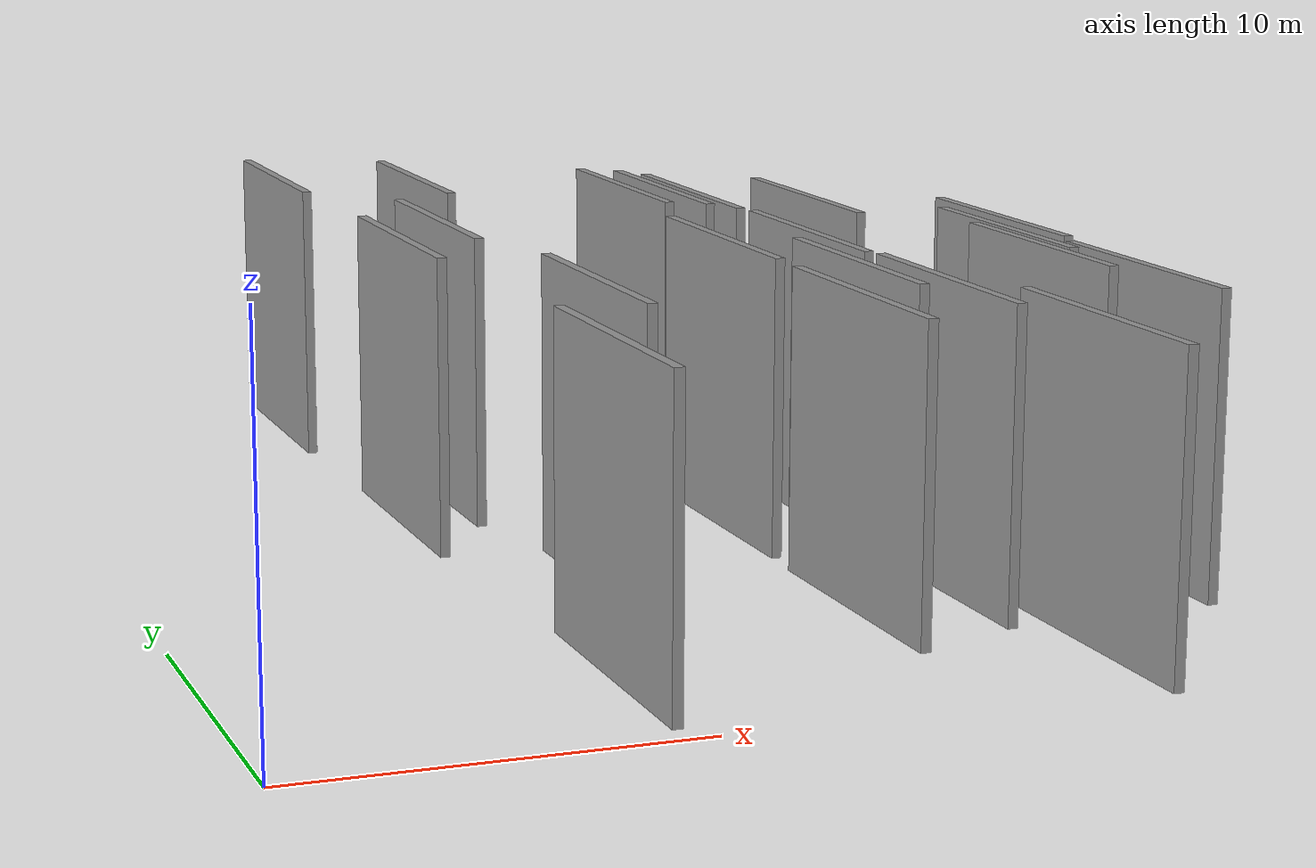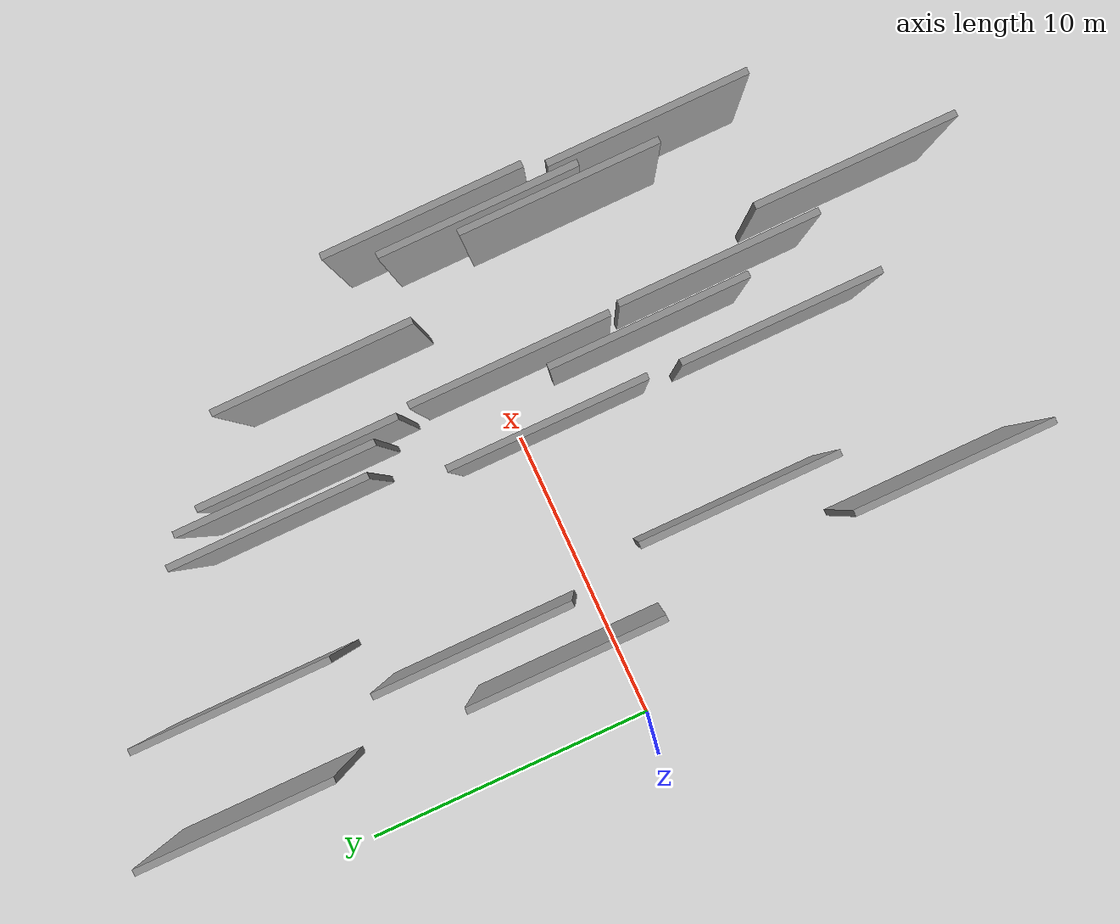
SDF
<sdf version="1.6">
 <world name="default">
  <scene>
   <sky><clouds><speed>12</speed></clouds></sky>
   <ambient>0.4 0.4 0.4 1</ambient>
   <background>0.7 0.7 0.7 1</background>
   <shadows>1</shadows>
  </scene>
  <gravity>0 0 -9.8066</gravity>
  <magnetic_field>6e-06 2.3e-05 -4.2e-05</magnetic_field>
  <physics default="0" name="default_physics" type="ode">
   <ode>
    <solver>
     <type>quick</type>
     <iters>10</iters>
     <sor>1.0</sor>
     <use_dynamic_moi_rescaling>0</use_dynamic_moi_rescaling>
    </solver>
    <constraints>
     <cfm>0</cfm>
     <erp>0.2</erp>
     <contact_max_correcting_vel>100</contact_max_correcting_vel>
     <contact_surface_layer>0.001</contact_surface_layer>
    </constraints>
   </ode>
   <max_step_size>0.004</max_step_size>
   <real_time_factor>1</real_time_factor>
   <real_time_update_rate>250</real_time_update_rate>
  </physics>
  <light name="sun" type="directional">
   <pose>0 0 10 0 0 0</pose>
   <diffuse>0.8 0.8 0.8 1</diffuse>
   <specular>0.2 0.2 0.2 1</specular>
   <attenuation>
    <range>1000</range>
    <constant>0.9</constant>
    <linear>0.01</linear>
    <quadratic>0.001</quadratic>
   </attenuation>
   <direction>-0.5 0.1 -0.9</direction>
  </light>
  <model name="grey_wall_1">
   <static>1</static>
   <pose>11.3788 5.5534 5.0 0.000000 0.000000 1.570796</pose>
   <link name="link">
    <pose>0 0 3.00 0 0 0</pose>
    <collision name="collision"><geometry><box><size>6.00 0.2 6.00</size></box></geometry></collision>
    <visual name="visual">
     <cast_shadows>0</cast_shadows>
     <geometry><box><size>6.00 0.2 6.00</size></box></geometry>
     <material>
      <script>
       <uri>model://grey_wall/materials/scripts</uri>
       <uri>model://grey_wall/materials/textures</uri>
       <name>vrc/grey_wall</name>
      </script>
     </material>
    </visual>
   </link>
  </model>
  <model name="grey_wall_2">
   <static>1</static>
   <pose>15.1914 -3.9984 5.0 0.000000 0.000000 1.570796</pose>
   <link name="link">
    <pose>0 0 3.00 0 0 0</pose>
    <collision name="collision"><geometry><box><size>6.00 0.2 6.00</size></box></geometry></collision>
    <visual name="visual">
     <cast_shadows>0</cast_shadows>
     <geometry><box><size>6.00 0.2 6.00</size></box></geometry>
     <material>
      <script>
       <uri>model://grey_wall/materials/scripts</uri>
       <uri>model://grey_wall/materials/textures</uri>
       <name>vrc/grey_wall</name>
      </script>
     </material>
    </visual>
   </link>
  </model>
  <model name="grey_wall_3">
   <static>1</static>
   <pose>9.4826 -7.9947 5.0 0.000000 0.000000 1.570796</pose>
   <link name="link">
    <pose>0 0 3.00 0 0 0</pose>
    <collision name="collision"><geometry><box><size>6.00 0.2 6.00</size></box></geometry></collision>
    <visual name="visual">
     <cast_shadows>0</cast_shadows>
     <geometry><box><size>6.00 0.2 6.00</size></box></geometry>
     <material>
      <script>
       <uri>model://grey_wall/materials/scripts</uri>
       <uri>model://grey_wall/materials/textures</uri>
       <name>vrc/grey_wall</name>
      </script>
     </material>
    </visual>
   </link>
  </model>
  <model name="grey_wall_4">
   <static>1</static>
   <pose>9.5295 -1.0471 5.0 0.000000 0.000000 1.570796</pose>
   <link name="link">
    <pose>0 0 3.00 0 0 0</pose>
    <collision name="collision"><geometry><box><size>6.00 0.2 6.00</size></box></geometry></collision>
    <visual name="visual">
     <cast_shadows>0</cast_shadows>
     <geometry><box><size>6.00 0.2 6.00</size></box></geometry>
     <material>
      <script>
       <uri>model://grey_wall/materials/scripts</uri>
       <uri>model://grey_wall/materials/textures</uri>
       <name>vrc/grey_wall</name>
      </script>
     </material>
    </visual>
   </link>
  </model>
  <model name="grey_wall_5">
   <static>1</static>
   <pose>4.7895 3.3583 5.0 0.000000 0.000000 1.570796</pose>
   <link name="link">
    <pose>0 0 3.00 0 0 0</pose>
    <collision name="collision"><geometry><box><size>6.00 0.2 6.00</size></box></geometry></collision>
    <visual name="visual">
     <cast_shadows>0</cast_shadows>
     <geometry><box><size>6.00 0.2 6.00</size></box></geometry>
     <material>
      <script>
       <uri>model://grey_wall/materials/scripts</uri>
       <uri>model://grey_wall/materials/textures</uri>
       <name>vrc/grey_wall</name>
      </script>
     </material>
    </visual>
   </link>
  </model>
  <model name="grey_wall_6">
   <static>1</static>
   <pose>15.5508 -1.7417 5.0 0.000000 0.000000 1.570796</pose>
   <link name="link">
    <pose>0 0 3.00 0 0 0</pose>
    <collision name="collision"><geometry><box><size>6.00 0.2 6.00</size></box></geometry></collision>
    <visual name="visual">
     <cast_shadows>0</cast_shadows>
     <geometry><box><size>6.00 0.2 6.00</size></box></geometry>
     <material>
      <script>
       <uri>model://grey_wall/materials/scripts</uri>
       <uri>model://grey_wall/materials/textures</uri>
       <name>vrc/grey_wall</name>
      </script>
     </material>
    </visual>
   </link>
  </model>
  <model name="grey_wall_7">
   <static>1</static>
   <pose>5.4618 -4.9224 5.0 0.000000 0.000000 1.570796</pose>
   <link name="link">
    <pose>0 0 3.00 0 0 0</pose>
    <collision name="collision"><geometry><box><size>6.00 0.2 6.00</size></box></geometry></collision>
    <visual name="visual">
     <cast_shadows>0</cast_shadows>
     <geometry><box><size>6.00 0.2 6.00</size></box></geometry>
     <material>
      <script>
       <uri>model://grey_wall/materials/scripts</uri>
       <uri>model://grey_wall/materials/textures</uri>
       <name>vrc/grey_wall</name>
      </script>
     </material>
    </visual>
   </link>
  </model>
  <model name="grey_wall_8">
   <static>1</static>
   <pose>3.8223 -10.5559 5.0 0.000000 0.000000 1.570796</pose>
   <link name="link">
    <pose>0 0 3.00 0 0 0</pose>
    <collision name="collision"><geometry><box><size>6.00 0.2 6.00</size></box></geometry></collision>
    <visual name="visual">
     <cast_shadows>0</cast_shadows>
     <geometry><box><size>6.00 0.2 6.00</size></box></geometry>
     <material>
      <script>
       <uri>model://grey_wall/materials/scripts</uri>
       <uri>model://grey_wall/materials/textures</uri>
       <name>vrc/grey_wall</name>
      </script>
     </material>
    </visual>
   </link>
  </model>
  <model name="grey_wall_9">
   <static>1</static>
   <pose>3.3732 1.2112 5.0 0.000000 0.000000 1.570796</pose>
   <link name="link">
    <pose>0 0 3.00 0 0 0</pose>
    <collision name="collision"><geometry><box><size>6.00 0.2 6.00</size></box></geometry></collision>
    <visual name="visual">
     <cast_shadows>0</cast_shadows>
     <geometry><box><size>6.00 0.2 6.00</size></box></geometry>
     <material>
      <script>
       <uri>model://grey_wall/materials/scripts</uri>
       <uri>model://grey_wall/materials/textures</uri>
       <name>vrc/grey_wall</name>
      </script>
     </material>
    </visual>
   </link>
  </model>
  <model name="grey_wall_10">
   <static>1</static>
   <pose>10.8827 -4.6897 5.0 0.000000 0.000000 1.570796</pose>
   <link name="link">
    <pose>0 0 3.00 0 0 0</pose>
    <collision name="collision"><geometry><box><size>6.00 0.2 6.00</size></box></geometry></collision>
    <visual name="visual">
     <cast_shadows>0</cast_shadows>
     <geometry><box><size>6.00 0.2 6.00</size></box></geometry>
     <material>
      <script>
       <uri>model://grey_wall/materials/scripts</uri>
       <uri>model://grey_wall/materials/textures</uri>
       <name>vrc/grey_wall</name>
      </script>
     </material>
    </visual>
   </link>
  </model>
  <model name="grey_wall_11">
   <static>1</static>
   <pose>13.5632 4.1065 5.0 0.000000 0.000000 1.570796</pose>
   <link name="link">
    <pose>0 0 3.00 0 0 0</pose>
    <collision name="collision"><geometry><box><size>6.00 0.2 6.00</size></box></geometry></collision>
    <visual name="visual">
     <cast_shadows>0</cast_shadows>
     <geometry><box><size>6.00 0.2 6.00</size></box></geometry>
     <material>
      <script>
       <uri>model://grey_wall/materials/scripts</uri>
       <uri>model://grey_wall/materials/textures</uri>
       <name>vrc/grey_wall</name>
      </script>
     </material>
    </visual>
   </link>
  </model>
  <model name="grey_wall_12">
   <static>1</static>
   <pose>16.1577 -0.3563 5.0 0.000000 0.000000 1.570796</pose>
   <link name="link">
    <pose>0 0 3.00 0 0 0</pose>
    <collision name="collision"><geometry><box><size>6.00 0.2 6.00</size></box></geometry></collision>
    <visual name="visual">
     <cast_shadows>0</cast_shadows>
     <geometry><box><size>6.00 0.2 6.00</size></box></geometry>
     <material>
      <script>
       <uri>model://grey_wall/materials/scripts</uri>
       <uri>model://grey_wall/materials/textures</uri>
       <name>vrc/grey_wall</name>
      </script>
     </material>
    </visual>
   </link>
  </model>
  <model name="grey_wall_13">
   <static>1</static>
   <pose>10.2532 6.9409 5.0 0.000000 0.000000 1.570796</pose>
   <link name="link">
    <pose>0 0 3.00 0 0 0</pose>
    <collision name="collision"><geometry><box><size>6.00 0.2 6.00</size></box></geometry></collision>
    <visual name="visual">
     <cast_shadows>0</cast_shadows>
     <geometry><box><size>6.00 0.2 6.00</size></box></geometry>
     <material>
      <script>
       <uri>model://grey_wall/materials/scripts</uri>
       <uri>model://grey_wall/materials/textures</uri>
       <name>vrc/grey_wall</name>
      </script>
     </material>
    </visual>
   </link>
  </model>
  <model name="grey_wall_14">
   <static>1</static>
   <pose>10.9964 6.3959 5.0 0.000000 0.000000 1.570796</pose>
   <link name="link">
    <pose>0 0 3.00 0 0 0</pose>
    <collision name="collision"><geometry><box><size>6.00 0.2 6.00</size></box></geometry></collision>
    <visual name="visual">
     <cast_shadows>0</cast_shadows>
     <geometry><box><size>6.00 0.2 6.00</size></box></geometry>
     <material>
      <script>
       <uri>model://grey_wall/materials/scripts</uri>
       <uri>model://grey_wall/materials/textures</uri>
       <name>vrc/grey_wall</name>
      </script>
     </material>
    </visual>
   </link>
  </model>
  <model name="grey_wall_15">
   <static>1</static>
   <pose>15.8823 -6.9526 5.0 0.000000 0.000000 1.570796</pose>
   <link name="link">
    <pose>0 0 3.00 0 0 0</pose>
    <collision name="collision"><geometry><box><size>6.00 0.2 6.00</size></box></geometry></collision>
    <visual name="visual">
     <cast_shadows>0</cast_shadows>
     <geometry><box><size>6.00 0.2 6.00</size></box></geometry>
     <material>
      <script>
       <uri>model://grey_wall/materials/scripts</uri>
       <uri>model://grey_wall/materials/textures</uri>
       <name>vrc/grey_wall</name>
      </script>
     </material>
    </visual>
   </link>
  </model>
  <model name="grey_wall_16">
   <static>1</static>
   <pose>11.5136 -0.8226 5.0 0.000000 0.000000 1.570796</pose>
   <link name="link">
    <pose>0 0 3.00 0 0 0</pose>
    <collision name="collision"><geometry><box><size>6.00 0.2 6.00</size></box></geometry></collision>
    <visual name="visual">
     <cast_shadows>0</cast_shadows>
     <geometry><box><size>6.00 0.2 6.00</size></box></geometry>
     <material>
      <script>
       <uri>model://grey_wall/materials/scripts</uri>
       <uri>model://grey_wall/materials/textures</uri>
       <name>vrc/grey_wall</name>
      </script>
     </material>
    </visual>
   </link>
  </model>
  <model name="grey_wall_17">
   <static>1</static>
   <pose>11.6338 -7.1258 5.0 0.000000 0.000000 1.570796</pose>
   <link name="link">
    <pose>0 0 3.00 0 0 0</pose>
    <collision name="collision"><geometry><box><size>6.00 0.2 6.00</size></box></geometry></collision>
    <visual name="visual">
     <cast_shadows>0</cast_shadows>
     <geometry><box><size>6.00 0.2 6.00</size></box></geometry>
     <material>
      <script>
       <uri>model://grey_wall/materials/scripts</uri>
       <uri>model://grey_wall/materials/textures</uri>
       <name>vrc/grey_wall</name>
      </script>
     </material>
    </visual>
   </link>
  </model>
  <model name="grey_wall_18">
   <static>1</static>
   <pose>12.4864 -11.5844 5.0 0.000000 0.000000 1.570796</pose>
   <link name="link">
    <pose>0 0 3.00 0 0 0</pose>
    <collision name="collision"><geometry><box><size>6.00 0.2 6.00</size></box></geometry></collision>
    <visual name="visual">
     <cast_shadows>0</cast_shadows>
     <geometry><box><size>6.00 0.2 6.00</size></box></geometry>
     <material>
      <script>
       <uri>model://grey_wall/materials/scripts</uri>
       <uri>model://grey_wall/materials/textures</uri>
       <name>vrc/grey_wall</name>
      </script>
     </material>
    </visual>
   </link>
  </model>
  <model name="grey_wall_19">
   <static>1</static>
   <pose>6.1725 9.9472 5.0 0.000000 0.000000 1.570796</pose>
   <link name="link">
    <pose>0 0 3.00 0 0 0</pose>
    <collision name="collision"><geometry><box><size>6.00 0.2 6.00</size></box></geometry></collision>
    <visual name="visual">
     <cast_shadows>0</cast_shadows>
     <geometry><box><size>6.00 0.2 6.00</size></box></geometry>
     <material>
      <script>
       <uri>model://grey_wall/materials/scripts</uri>
       <uri>model://grey_wall/materials/textures</uri>
       <name>vrc/grey_wall</name>
      </script>
     </material>
    </visual>
   </link>
  </model>
  <model name="grey_wall_20">
   <static>1</static>
   <pose>3.1682 11.1977 5.0 0.000000 0.000000 1.570796</pose>
   <link name="link">
    <pose>0 0 3.00 0 0 0</pose>
    <collision name="collision"><geometry><box><size>6.00 0.2 6.00</size></box></geometry></collision>
    <visual name="visual">
     <cast_shadows>0</cast_shadows>
     <geometry><box><size>6.00 0.2 6.00</size></box></geometry>
     <material>
      <script>
       <uri>model://grey_wall/materials/scripts</uri>
       <uri>model://grey_wall/materials/textures</uri>
       <name>vrc/grey_wall</name>
      </script>
     </material>
    </visual>
   </link>
  </model>
 </world>
</sdf>
